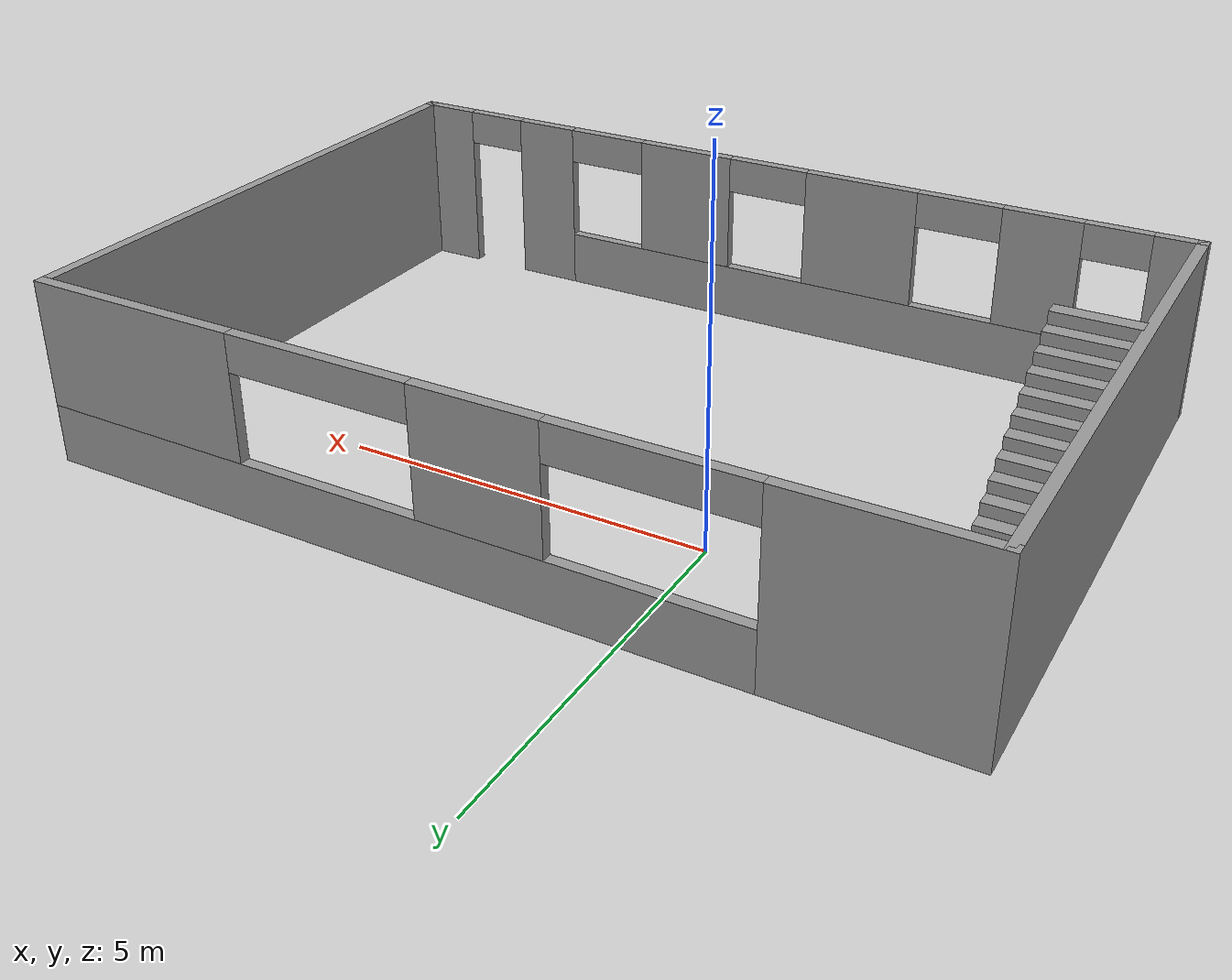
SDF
<?xml version='1.0'?>
<sdf version='1.7'>
  <model name='new_room'>
    <pose>2 -2 0 0 -0 0</pose>
    <link name='Stairs_1'>
      <visual name='Stairs_1_Visual_0'>
        <pose>-5.40057 2.01661 0.083333 0 -0 0</pose>
        <geometry>
          <box>
            <size>1.09153 0.224566 0.166667</size>
          </box>
        </geometry>
        <material>
          <script>
            <uri>file://media/materials/scripts/gazebo.material</uri>
            <name>Gazebo/Grey</name>
          </script>
          <ambient>1 1 1 1</ambient>
        </material>
        <meta>
          <layer>0</layer>
        </meta>
      </visual>
      <collision name='Stairs_1_Collision_0'>
        <geometry>
          <box>
            <size>1.09153 0.224566 0.166667</size>
          </box>
        </geometry>
        <pose>-5.40057 2.01661 0.083333 0 -0 0</pose>
      </collision>
      <visual name='Stairs_1_Visual_1'>
        <pose>-5.40057 1.79205 0.25 0 -0 0</pose>
        <geometry>
          <box>
            <size>1.09153 0.224566 0.166667</size>
          </box>
        </geometry>
        <material>
          <script>
            <uri>file://media/materials/scripts/gazebo.material</uri>
            <name>Gazebo/Grey</name>
          </script>
          <ambient>1 1 1 1</ambient>
        </material>
        <meta>
          <layer>0</layer>
        </meta>
      </visual>
      <collision name='Stairs_1_Collision_1'>
        <geometry>
          <box>
            <size>1.09153 0.224566 0.166667</size>
          </box>
        </geometry>
        <pose>-5.40057 1.79205 0.25 0 -0 0</pose>
      </collision>
      <visual name='Stairs_1_Visual_2'>
        <pose>-5.40057 1.56748 0.416667 0 -0 0</pose>
        <geometry>
          <box>
            <size>1.09153 0.224566 0.166667</size>
          </box>
        </geometry>
        <material>
          <script>
            <uri>file://media/materials/scripts/gazebo.material</uri>
            <name>Gazebo/Grey</name>
          </script>
          <ambient>1 1 1 1</ambient>
        </material>
        <meta>
          <layer>0</layer>
        </meta>
      </visual>
      <collision name='Stairs_1_Collision_2'>
        <geometry>
          <box>
            <size>1.09153 0.224566 0.166667</size>
          </box>
        </geometry>
        <pose>-5.40057 1.56748 0.416667 0 -0 0</pose>
      </collision>
      <visual name='Stairs_1_Visual_3'>
        <pose>-5.40057 1.34291 0.583333 0 -0 0</pose>
        <geometry>
          <box>
            <size>1.09153 0.224566 0.166667</size>
          </box>
        </geometry>
        <material>
          <script>
            <uri>file://media/materials/scripts/gazebo.material</uri>
            <name>Gazebo/Grey</name>
          </script>
          <ambient>1 1 1 1</ambient>
        </material>
        <meta>
          <layer>0</layer>
        </meta>
      </visual>
      <collision name='Stairs_1_Collision_3'>
        <geometry>
          <box>
            <size>1.09153 0.224566 0.166667</size>
          </box>
        </geometry>
        <pose>-5.40057 1.34291 0.583333 0 -0 0</pose>
      </collision>
      <visual name='Stairs_1_Visual_4'>
        <pose>-5.40057 1.11835 0.75 0 -0 0</pose>
        <geometry>
          <box>
            <size>1.09153 0.224566 0.166667</size>
          </box>
        </geometry>
        <material>
          <script>
            <uri>file://media/materials/scripts/gazebo.material</uri>
            <name>Gazebo/Grey</name>
          </script>
          <ambient>1 1 1 1</ambient>
        </material>
        <meta>
          <layer>0</layer>
        </meta>
      </visual>
      <collision name='Stairs_1_Collision_4'>
        <geometry>
          <box>
            <size>1.09153 0.224566 0.166667</size>
          </box>
        </geometry>
        <pose>-5.40057 1.11835 0.75 0 -0 0</pose>
      </collision>
      <visual name='Stairs_1_Visual_5'>
        <pose>-5.40057 0.893779 0.916667 0 -0 0</pose>
        <geometry>
          <box>
            <size>1.09153 0.224566 0.166667</size>
          </box>
        </geometry>
        <material>
          <script>
            <uri>file://media/materials/scripts/gazebo.material</uri>
            <name>Gazebo/Grey</name>
          </script>
          <ambient>1 1 1 1</ambient>
        </material>
        <meta>
          <layer>0</layer>
        </meta>
      </visual>
      <collision name='Stairs_1_Collision_5'>
        <geometry>
          <box>
            <size>1.09153 0.224566 0.166667</size>
          </box>
        </geometry>
        <pose>-5.40057 0.893779 0.916667 0 -0 0</pose>
      </collision>
      <visual name='Stairs_1_Visual_6'>
        <pose>-5.40057 0.669213 1.08333 0 -0 0</pose>
        <geometry>
          <box>
            <size>1.09153 0.224566 0.166667</size>
          </box>
        </geometry>
        <material>
          <script>
            <uri>file://media/materials/scripts/gazebo.material</uri>
            <name>Gazebo/Grey</name>
          </script>
          <ambient>1 1 1 1</ambient>
        </material>
        <meta>
          <layer>0</layer>
        </meta>
      </visual>
      <collision name='Stairs_1_Collision_6'>
        <geometry>
          <box>
            <size>1.09153 0.224566 0.166667</size>
          </box>
        </geometry>
        <pose>-5.40057 0.669213 1.08333 0 -0 0</pose>
      </collision>
      <visual name='Stairs_1_Visual_7'>
        <pose>-5.40057 0.444646 1.25 0 -0 0</pose>
        <geometry>
          <box>
            <size>1.09153 0.224566 0.166667</size>
          </box>
        </geometry>
        <material>
          <script>
            <uri>file://media/materials/scripts/gazebo.material</uri>
            <name>Gazebo/Grey</name>
          </script>
          <ambient>1 1 1 1</ambient>
        </material>
        <meta>
          <layer>0</layer>
        </meta>
      </visual>
      <collision name='Stairs_1_Collision_7'>
        <geometry>
          <box>
            <size>1.09153 0.224566 0.166667</size>
          </box>
        </geometry>
        <pose>-5.40057 0.444646 1.25 0 -0 0</pose>
      </collision>
      <visual name='Stairs_1_Visual_8'>
        <pose>-5.40057 0.22008 1.41667 0 -0 0</pose>
        <geometry>
          <box>
            <size>1.09153 0.224566 0.166667</size>
          </box>
        </geometry>
        <material>
          <script>
            <uri>file://media/materials/scripts/gazebo.material</uri>
            <name>Gazebo/Grey</name>
          </script>
          <ambient>1 1 1 1</ambient>
        </material>
        <meta>
          <layer>0</layer>
        </meta>
      </visual>
      <collision name='Stairs_1_Collision_8'>
        <geometry>
          <box>
            <size>1.09153 0.224566 0.166667</size>
          </box>
        </geometry>
        <pose>-5.40057 0.22008 1.41667 0 -0 0</pose>
      </collision>
      <visual name='Stairs_1_Visual_9'>
        <pose>-5.40057 -0.004487 1.58333 0 -0 0</pose>
        <geometry>
          <box>
            <size>1.09153 0.224566 0.166667</size>
          </box>
        </geometry>
        <material>
          <script>
            <uri>file://media/materials/scripts/gazebo.material</uri>
            <name>Gazebo/Grey</name>
          </script>
          <ambient>1 1 1 1</ambient>
        </material>
        <meta>
          <layer>0</layer>
        </meta>
      </visual>
      <collision name='Stairs_1_Collision_9'>
        <geometry>
          <box>
            <size>1.09153 0.224566 0.166667</size>
          </box>
        </geometry>
        <pose>-5.40057 -0.004487 1.58333 0 -0 0</pose>
      </collision>
      <visual name='Stairs_1_Visual_10'>
        <pose>-5.40057 -0.229053 1.75 0 -0 0</pose>
        <geometry>
          <box>
            <size>1.09153 0.224566 0.166667</size>
          </box>
        </geometry>
        <material>
          <script>
            <uri>file://media/materials/scripts/gazebo.material</uri>
            <name>Gazebo/Grey</name>
          </script>
          <ambient>1 1 1 1</ambient>
        </material>
        <meta>
          <layer>0</layer>
        </meta>
      </visual>
      <collision name='Stairs_1_Collision_10'>
        <geometry>
          <box>
            <size>1.09153 0.224566 0.166667</size>
          </box>
        </geometry>
        <pose>-5.40057 -0.229053 1.75 0 -0 0</pose>
      </collision>
      <visual name='Stairs_1_Visual_11'>
        <pose>-5.40057 -0.453619 1.91667 0 -0 0</pose>
        <geometry>
          <box>
            <size>1.09153 0.224566 0.166667</size>
          </box>
        </geometry>
        <material>
          <script>
            <uri>file://media/materials/scripts/gazebo.material</uri>
            <name>Gazebo/Grey</name>
          </script>
          <ambient>1 1 1 1</ambient>
        </material>
        <meta>
          <layer>0</layer>
        </meta>
      </visual>
      <collision name='Stairs_1_Collision_11'>
        <geometry>
          <box>
            <size>1.09153 0.224566 0.166667</size>
          </box>
        </geometry>
        <pose>-5.40057 -0.453619 1.91667 0 -0 0</pose>
      </collision>
      <visual name='Stairs_1_Visual_12'>
        <pose>-5.40057 -0.678186 2.08333 0 -0 0</pose>
        <geometry>
          <box>
            <size>1.09153 0.224566 0.166667</size>
          </box>
        </geometry>
        <material>
          <script>
            <uri>file://media/materials/scripts/gazebo.material</uri>
            <name>Gazebo/Grey</name>
          </script>
          <ambient>1 1 1 1</ambient>
        </material>
        <meta>
          <layer>0</layer>
        </meta>
      </visual>
      <collision name='Stairs_1_Collision_12'>
        <geometry>
          <box>
            <size>1.09153 0.224566 0.166667</size>
          </box>
        </geometry>
        <pose>-5.40057 -0.678186 2.08333 0 -0 0</pose>
      </collision>
      <visual name='Stairs_1_Visual_13'>
        <pose>-5.40057 -0.902752 2.25 0 -0 0</pose>
        <geometry>
          <box>
            <size>1.09153 0.224566 0.166667</size>
          </box>
        </geometry>
        <material>
          <script>
            <uri>file://media/materials/scripts/gazebo.material</uri>
            <name>Gazebo/Grey</name>
          </script>
          <ambient>1 1 1 1</ambient>
        </material>
        <meta>
          <layer>0</layer>
        </meta>
      </visual>
      <collision name='Stairs_1_Collision_13'>
        <geometry>
          <box>
            <size>1.09153 0.224566 0.166667</size>
          </box>
        </geometry>
        <pose>-5.40057 -0.902752 2.25 0 -0 0</pose>
      </collision>
      <visual name='Stairs_1_Visual_14'>
        <pose>-5.40057 -1.12732 2.41667 0 -0 0</pose>
        <geometry>
          <box>
            <size>1.09153 0.224566 0.166667</size>
          </box>
        </geometry>
        <material>
          <script>
            <uri>file://media/materials/scripts/gazebo.material</uri>
            <name>Gazebo/Grey</name>
          </script>
          <ambient>1 1 1 1</ambient>
        </material>
        <meta>
          <layer>0</layer>
        </meta>
      </visual>
      <collision name='Stairs_1_Collision_14'>
        <geometry>
          <box>
            <size>1.09153 0.224566 0.166667</size>
          </box>
        </geometry>
        <pose>-5.40057 -1.12732 2.41667 0 -0 0</pose>
      </collision>
    </link>
    <link name='Wall_21'>
      <pose>-0 4 0 0 -0 0</pose>
      <visual name='Wall_21_Visual_0'>
        <pose>-4.84103 0 1.25 0 -0 0</pose>
        <geometry>
          <box>
            <size>2.46795 0.15 2.5</size>
          </box>
        </geometry>
        <material>
          <script>
            <uri>file://media/materials/scripts/gazebo.material</uri>
            <name>Gazebo/Grey</name>
          </script>
          <ambient>1 1 1 1</ambient>
        </material>
        <meta>
          <layer>0</layer>
        </meta>
      </visual>
      <collision name='Wall_21_Collision_0'>
        <geometry>
          <box>
            <size>2.46795 0.15 2.5</size>
          </box>
        </geometry>
        <pose>-4.84103 0 1.25 0 -0 0</pose>
      </collision>
      <visual name='Wall_21_Visual_1'>
        <pose>1.23397 0 0.4 0 -0 0</pose>
        <geometry>
          <box>
            <size>9.68205 0.15 0.8</size>
          </box>
        </geometry>
        <material>
          <script>
            <uri>file://media/materials/scripts/gazebo.material</uri>
            <name>Gazebo/Grey</name>
          </script>
          <ambient>1 1 1 1</ambient>
        </material>
        <meta>
          <layer>0</layer>
        </meta>
      </visual>
      <collision name='Wall_21_Collision_1'>
        <geometry>
          <box>
            <size>9.68205 0.15 0.8</size>
          </box>
        </geometry>
        <pose>1.23397 0 0.4 0 -0 0</pose>
      </collision>
      <visual name='Wall_21_Visual_2'>
        <pose>-0.270095 0 1.65 0 -0 0</pose>
        <geometry>
          <box>
            <size>1.67391 0.15 1.7</size>
          </box>
        </geometry>
        <material>
          <script>
            <uri>file://media/materials/scripts/gazebo.material</uri>
            <name>Gazebo/Grey</name>
          </script>
          <ambient>1 1 1 1</ambient>
        </material>
        <meta>
          <layer>0</layer>
        </meta>
      </visual>
      <collision name='Wall_21_Collision_2'>
        <geometry>
          <box>
            <size>1.67391 0.15 1.7</size>
          </box>
        </geometry>
        <pose>-0.270095 0 1.65 0 -0 0</pose>
      </collision>
      <visual name='Wall_21_Visual_3'>
        <pose>4.57093 0 1.65 0 -0 0</pose>
        <geometry>
          <box>
            <size>3.00814 0.15 1.7</size>
          </box>
        </geometry>
        <material>
          <script>
            <uri>file://media/materials/scripts/gazebo.material</uri>
            <name>Gazebo/Grey</name>
          </script>
          <ambient>1 1 1 1</ambient>
        </material>
        <meta>
          <layer>0</layer>
        </meta>
      </visual>
      <collision name='Wall_21_Collision_3'>
        <geometry>
          <box>
            <size>3.00814 0.15 1.7</size>
          </box>
        </geometry>
        <pose>4.57093 0 1.65 0 -0 0</pose>
      </collision>
      <visual name='Wall_21_Visual_4'>
        <pose>-2.35705 0 2.25 0 -0 0</pose>
        <geometry>
          <box>
            <size>2.5 0.15 0.5</size>
          </box>
        </geometry>
        <material>
          <script>
            <uri>file://media/materials/scripts/gazebo.material</uri>
            <name>Gazebo/Grey</name>
          </script>
          <ambient>1 1 1 1</ambient>
        </material>
        <meta>
          <layer>0</layer>
        </meta>
      </visual>
      <collision name='Wall_21_Collision_4'>
        <geometry>
          <box>
            <size>2.5 0.15 0.5</size>
          </box>
        </geometry>
        <pose>-2.35705 0 2.25 0 -0 0</pose>
      </collision>
      <visual name='Wall_21_Visual_5'>
        <pose>1.81686 0 2.25 0 -0 0</pose>
        <geometry>
          <box>
            <size>2.5 0.15 0.5</size>
          </box>
        </geometry>
        <material>
          <script>
            <uri>file://media/materials/scripts/gazebo.material</uri>
            <name>Gazebo/Grey</name>
          </script>
          <ambient>1 1 1 1</ambient>
        </material>
        <meta>
          <layer>0</layer>
        </meta>
      </visual>
      <collision name='Wall_21_Collision_5'>
        <geometry>
          <box>
            <size>2.5 0.15 0.5</size>
          </box>
        </geometry>
        <pose>1.81686 0 2.25 0 -0 0</pose>
      </collision>
    </link>
    <link name='Wall_22'>
      <collision name='Wall_22_Collision'>
        <geometry>
          <box>
            <size>8.15 0.15 2.5</size>
          </box>
        </geometry>
        <pose>0 0 1.25 0 -0 0</pose>
      </collision>
      <visual name='Wall_22_Visual'>
        <pose>0 0 1.25 0 -0 0</pose>
        <geometry>
          <box>
            <size>8.15 0.15 2.5</size>
          </box>
        </geometry>
        <material>
          <script>
            <uri>file://media/materials/scripts/gazebo.material</uri>
            <name>Gazebo/Grey</name>
          </script>
          <ambient>1 1 1 1</ambient>
        </material>
        <meta>
          <layer>0</layer>
        </meta>
      </visual>
      <pose>6 0 0 0 -0 -1.5708</pose>
    </link>
    <link name='Wall_23'>
      <pose>-0 -4 0 0 -0 3.14159</pose>
      <visual name='Wall_23_Visual_0'>
        <pose>-5.62779 0 1.25 0 -0 0</pose>
        <geometry>
          <box>
            <size>0.894419 0.15 2.5</size>
          </box>
        </geometry>
        <material>
          <script>
            <uri>file://media/materials/scripts/gazebo.material</uri>
            <name>Gazebo/Grey</name>
          </script>
          <ambient>1 1 1 1</ambient>
        </material>
        <meta>
          <layer>0</layer>
        </meta>
      </visual>
      <collision name='Wall_23_Collision_0'>
        <geometry>
          <box>
            <size>0.894419 0.15 2.5</size>
          </box>
        </geometry>
        <pose>-5.62779 0 1.25 0 -0 0</pose>
      </collision>
      <visual name='Wall_23_Visual_1'>
        <pose>-3.80993 0 1.25 0 -0 0</pose>
        <geometry>
          <box>
            <size>0.941293 0.15 2.5</size>
          </box>
        </geometry>
        <material>
          <script>
            <uri>file://media/materials/scripts/gazebo.material</uri>
            <name>Gazebo/Grey</name>
          </script>
          <ambient>1 1 1 1</ambient>
        </material>
        <meta>
          <layer>0</layer>
        </meta>
      </visual>
      <collision name='Wall_23_Collision_1'>
        <geometry>
          <box>
            <size>0.941293 0.15 2.5</size>
          </box>
        </geometry>
        <pose>-3.80993 0 1.25 0 -0 0</pose>
      </collision>
      <visual name='Wall_23_Visual_2'>
        <pose>5.73474 0 1.25 0 -0 0</pose>
        <geometry>
          <box>
            <size>0.680521 0.15 2.5</size>
          </box>
        </geometry>
        <material>
          <script>
            <uri>file://media/materials/scripts/gazebo.material</uri>
            <name>Gazebo/Grey</name>
          </script>
          <ambient>1 1 1 1</ambient>
        </material>
        <meta>
          <layer>0</layer>
        </meta>
      </visual>
      <collision name='Wall_23_Collision_2'>
        <geometry>
          <box>
            <size>0.680521 0.15 2.5</size>
          </box>
        </geometry>
        <pose>5.73474 0 1.25 0 -0 0</pose>
      </collision>
      <visual name='Wall_23_Visual_3'>
        <pose>0.577595 0 0.4 0 -0 0</pose>
        <geometry>
          <box>
            <size>7.83377 0.15 0.8</size>
          </box>
        </geometry>
        <material>
          <script>
            <uri>file://media/materials/scripts/gazebo.material</uri>
            <name>Gazebo/Grey</name>
          </script>
          <ambient>1 1 1 1</ambient>
        </material>
        <meta>
          <layer>0</layer>
        </meta>
      </visual>
      <collision name='Wall_23_Collision_3'>
        <geometry>
          <box>
            <size>7.83377 0.15 0.8</size>
          </box>
        </geometry>
        <pose>0.577595 0 0.4 0 -0 0</pose>
      </collision>
      <visual name='Wall_23_Visual_4'>
        <pose>-1.40234 0 1.65 0 -0 0</pose>
        <geometry>
          <box>
            <size>1.4739 0.15 1.7</size>
          </box>
        </geometry>
        <material>
          <script>
            <uri>file://media/materials/scripts/gazebo.material</uri>
            <name>Gazebo/Grey</name>
          </script>
          <ambient>1 1 1 1</ambient>
        </material>
        <meta>
          <layer>0</layer>
        </meta>
      </visual>
      <collision name='Wall_23_Collision_4'>
        <geometry>
          <box>
            <size>1.4739 0.15 1.7</size>
          </box>
        </geometry>
        <pose>-1.40234 0 1.65 0 -0 0</pose>
      </collision>
      <visual name='Wall_23_Visual_5'>
        <pose>1.3658 0 1.65 0 -0 0</pose>
        <geometry>
          <box>
            <size>1.66239 0.15 1.7</size>
          </box>
        </geometry>
        <material>
          <script>
            <uri>file://media/materials/scripts/gazebo.material</uri>
            <name>Gazebo/Grey</name>
          </script>
          <ambient>1 1 1 1</ambient>
        </material>
        <meta>
          <layer>0</layer>
        </meta>
      </visual>
      <collision name='Wall_23_Collision_5'>
        <geometry>
          <box>
            <size>1.66239 0.15 1.7</size>
          </box>
        </geometry>
        <pose>1.3658 0 1.65 0 -0 0</pose>
      </collision>
      <visual name='Wall_23_Visual_6'>
        <pose>3.94574 0 1.65 0 -0 0</pose>
        <geometry>
          <box>
            <size>1.09748 0.15 1.7</size>
          </box>
        </geometry>
        <material>
          <script>
            <uri>file://media/materials/scripts/gazebo.material</uri>
            <name>Gazebo/Grey</name>
          </script>
          <ambient>1 1 1 1</ambient>
        </material>
        <meta>
          <layer>0</layer>
        </meta>
      </visual>
      <collision name='Wall_23_Collision_6'>
        <geometry>
          <box>
            <size>1.09748 0.15 1.7</size>
          </box>
        </geometry>
        <pose>3.94574 0 1.65 0 -0 0</pose>
      </collision>
      <visual name='Wall_23_Visual_7'>
        <pose>-4.73058 0 2.25 0 -0 0</pose>
        <geometry>
          <box>
            <size>0.9 0.15 0.5</size>
          </box>
        </geometry>
        <material>
          <script>
            <uri>file://media/materials/scripts/gazebo.material</uri>
            <name>Gazebo/Grey</name>
          </script>
          <ambient>1 1 1 1</ambient>
        </material>
        <meta>
          <layer>0</layer>
        </meta>
      </visual>
      <collision name='Wall_23_Collision_7'>
        <geometry>
          <box>
            <size>0.9 0.15 0.5</size>
          </box>
        </geometry>
        <pose>-4.73058 0 2.25 0 -0 0</pose>
      </collision>
      <visual name='Wall_23_Visual_8'>
        <pose>4.94448 0 2.25 0 -0 0</pose>
        <geometry>
          <box>
            <size>0.9 0.15 0.5</size>
          </box>
        </geometry>
        <material>
          <script>
            <uri>file://media/materials/scripts/gazebo.material</uri>
            <name>Gazebo/Grey</name>
          </script>
          <ambient>1 1 1 1</ambient>
        </material>
        <meta>
          <layer>0</layer>
        </meta>
      </visual>
      <collision name='Wall_23_Collision_8'>
        <geometry>
          <box>
            <size>0.9 0.15 0.5</size>
          </box>
        </geometry>
        <pose>4.94448 0 2.25 0 -0 0</pose>
      </collision>
      <visual name='Wall_23_Visual_9'>
        <pose>-2.73929 0 2.25 0 -0 0</pose>
        <geometry>
          <box>
            <size>1.2 0.15 0.5</size>
          </box>
        </geometry>
        <material>
          <script>
            <uri>file://media/materials/scripts/gazebo.material</uri>
            <name>Gazebo/Grey</name>
          </script>
          <ambient>1 1 1 1</ambient>
        </material>
        <meta>
          <layer>0</layer>
        </meta>
      </visual>
      <collision name='Wall_23_Collision_9'>
        <geometry>
          <box>
            <size>1.2 0.15 0.5</size>
          </box>
        </geometry>
        <pose>-2.73929 0 2.25 0 -0 0</pose>
      </collision>
      <visual name='Wall_23_Visual_10'>
        <pose>-0.065391 0 2.25 0 -0 0</pose>
        <geometry>
          <box>
            <size>1.2 0.15 0.5</size>
          </box>
        </geometry>
        <material>
          <script>
            <uri>file://media/materials/scripts/gazebo.material</uri>
            <name>Gazebo/Grey</name>
          </script>
          <ambient>1 1 1 1</ambient>
        </material>
        <meta>
          <layer>0</layer>
        </meta>
      </visual>
      <collision name='Wall_23_Collision_10'>
        <geometry>
          <box>
            <size>1.2 0.15 0.5</size>
          </box>
        </geometry>
        <pose>-0.065391 0 2.25 0 -0 0</pose>
      </collision>
      <visual name='Wall_23_Visual_11'>
        <pose>2.797 0 2.25 0 -0 0</pose>
        <geometry>
          <box>
            <size>1.2 0.15 0.5</size>
          </box>
        </geometry>
        <material>
          <script>
            <uri>file://media/materials/scripts/gazebo.material</uri>
            <name>Gazebo/Grey</name>
          </script>
          <ambient>1 1 1 1</ambient>
        </material>
        <meta>
          <layer>0</layer>
        </meta>
      </visual>
      <collision name='Wall_23_Collision_11'>
        <geometry>
          <box>
            <size>1.2 0.15 0.5</size>
          </box>
        </geometry>
        <pose>2.797 0 2.25 0 -0 0</pose>
      </collision>
    </link>
    <link name='Wall_24'>
      <collision name='Wall_24_Collision'>
        <geometry>
          <box>
            <size>8.15 0.15 2.5</size>
          </box>
        </geometry>
        <pose>0 0 1.25 0 -0 0</pose>
      </collision>
      <visual name='Wall_24_Visual'>
        <pose>0 0 1.25 0 -0 0</pose>
        <geometry>
          <box>
            <size>8.15 0.15 2.5</size>
          </box>
        </geometry>
        <material>
          <script>
            <uri>file://media/materials/scripts/gazebo.material</uri>
            <name>Gazebo/Grey</name>
          </script>
          <ambient>1 1 1 1</ambient>
        </material>
        <meta>
          <layer>0</layer>
        </meta>
      </visual>
      <pose>-6 0 0 0 -0 1.5708</pose>
    </link>
    <static>1</static>
  </model>
</sdf>
